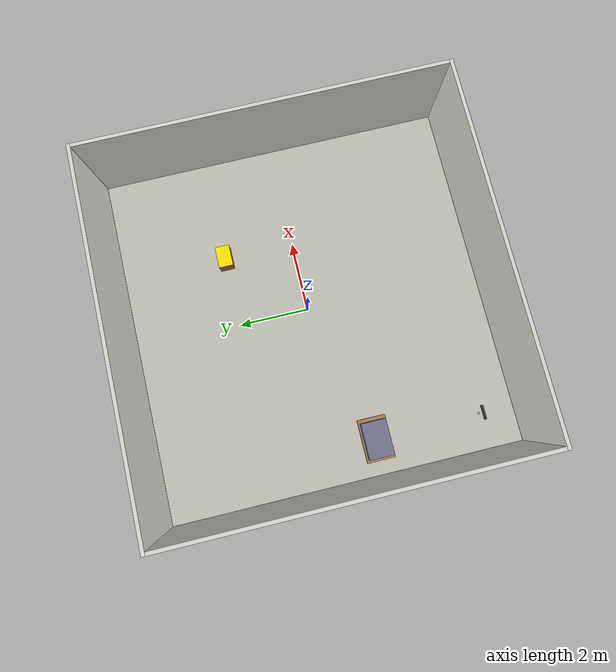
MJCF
<mujoco model="indoor_world">
    <worldbody>
        <geom name="floor" type="plane" size="5 5 0.1"
              rgba="0.75 0.75 0.72 1" friction="1.0 0.005 0.0001"/>
        <light directional="true" diffuse=".8 .8 .8" specular=".3 .3 .3"
               pos="0 0 4" dir="0 0 -1"/>
        <!-- 보조 조명 (그림자 완화) -->
        <light directional="false" diffuse=".4 .4 .4" specular=".1 .1 .1"
               pos="3 3 3.5" dir="-0.3 -0.3 -1"/>
        <light directional="false" diffuse=".4 .4 .4" specular=".1 .1 .1"
               pos="-3 -3 3.5" dir="0.3 0.3 -1"/>

        <!-- ================================================================
             2. 실내 벽면 (10m x 10m, 벽 높이 3m, 벽 두께 0.1m)
             ================================================================ -->
        <geom name="wall_north" type="box" size="5.1 0.05 1.5"
              pos="0 5.05 1.5" rgba="0.85 0.85 0.82 1"/>
        <geom name="wall_south" type="box" size="5.1 0.05 1.5"
              pos="0 -5.05 1.5" rgba="0.85 0.85 0.82 1"/>
        <geom name="wall_east" type="box" size="0.05 5.0 1.5"
              pos="5.05 0 1.5" rgba="0.85 0.85 0.82 1"/>
        <geom name="wall_west" type="box" size="0.05 5.0 1.5"
              pos="-5.05 0 1.5" rgba="0.85 0.85 0.82 1"/>

        <body name="charging_station" pos="-4 -4 0">
            <!-- 충전 스테이션 본체 (후방 벽) -->
            <geom name="station_body" type="box"
                  size="0.2 0.02 0.075" pos="0 -0.13 0.075"
                  rgba="0.3 0.3 0.3 1" mass="2.0"/>
            <!-- 충전 단자 표시 -->
            <geom name="station_connector" type="box"
                  size="0.03 0.01 0.02" pos="0 -0.11 0.05"
                  rgba="1.0 0.8 0.0 1" contype="0" conaffinity="0"/>
            <!-- 상태 표시등 (초록색 = 대기 중) -->
            <geom name="station_led" type="sphere" size="0.01"
                  pos="0 -0.13 0.16" rgba="0.0 1.0 0.0 1"
                  contype="0" conaffinity="0"/>
            <site name="docking_port" pos="0 0 0.01" size="0.03"
                  rgba="0 1 0 0.3"/>
        </body>

        <!-- 장애물 1: 통로에 방치된 카고 박스 -->
        <body name="obstacle_cargo" pos="2 2 0">
            <geom name="obstacle_1_box" type="box"
                  size="0.3 0.2 0.25" pos="0 0 0.25"
                  rgba="0.75 0.35 0.2 1" mass="20.0"/>
            <!-- 경고 테이프 표시 (상단) -->
            <geom name="obstacle_1_tape" type="box"
                  size="0.305 0.205 0.005" pos="0 0 0.505"
                  rgba="1.0 0.9 0.0 1" contype="0" conaffinity="0"/>
        </body>

        <!-- 장애물 2: 팔레트 + 자재 적재 -->
        <body name="obstacle_pallet" pos="-4 -1 0">
            <!-- 목재 팔레트 (EUR 팔레트: 1200 x 800 x 144mm) -->
            <geom name="pallet_base" type="box"
                  size="0.6 0.4 0.072" pos="0 0 0.072"
                  rgba="0.65 0.50 0.30 1" mass="25.0"/>
            <!-- 팔레트 위 적재 상자 -->
            <geom name="pallet_cargo" type="box"
                  size="0.5 0.35 0.2" pos="0 0 0.344"
                  rgba="0.45 0.45 0.55 1" mass="15.0"/>
        </body>
    </worldbody>
</mujoco>
